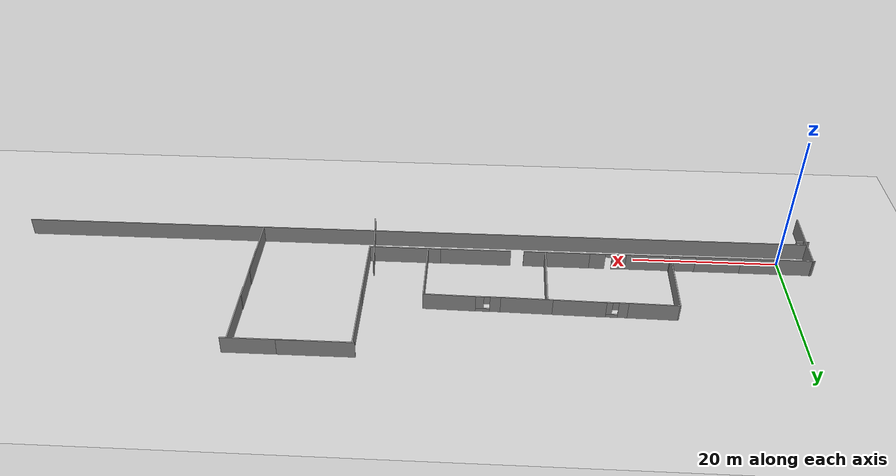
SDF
<sdf version="1.6">
 <world name="default">
  <light name="sun" type="directional">
   <pose>0 0 10 0 -0 0</pose>
   <diffuse>0.8 0.8 0.8 1</diffuse>
   <specular>0.2 0.2 0.2 1</specular>
   <attenuation>
    <range>1000</range>
    <constant>0.9</constant>
    <linear>0.01</linear>
    <quadratic>0.001</quadratic>
   </attenuation>
   <direction>-0.5 0.1 -0.9</direction>
  </light>
  <plugin name="ros_interface_plugin" filename="librotors_gazebo_ros_interface_plugin.so"/>
  <model name="ground_plane">
   <static>1</static>
   <link name="link">
    <collision name="collision">
     <geometry><plane><normal>0 0 1</normal><size>100 100</size></plane></geometry>
     <surface>
      <contact><collide_bitmask>65535</collide_bitmask></contact>
      <friction><ode><mu>100</mu><mu2>50</mu2></ode></friction>
     </surface>
    </collision>
    <visual name="visual">
     <cast_shadows>0</cast_shadows>
     <geometry><plane><normal>0 0 1</normal><size>100 100</size></plane></geometry>
     <material>
      <script><uri>file://media/materials/scripts/gazebo.material</uri><name>Gazebo/Grey</name></script>
     </material>
    </visual>
   </link>
  </model>
  <gravity>0 0 -9.8</gravity>
  <magnetic_field>6e-06 2.3e-05 -4.2e-05</magnetic_field>
  <atmosphere type="adiabatic"/>
  <physics name="default_physics" default="0" type="ode">
   <max_step_size>0.001</max_step_size>
   <real_time_factor>1</real_time_factor>
   <real_time_update_rate>1000</real_time_update_rate>
  </physics>
  <scene><ambient>0.4 0.4 0.4 1</ambient><background>0.7 0.7 0.7 1</background><shadows>1</shadows></scene>
  <spherical_coordinates>
   <surface_model>EARTH_WGS84</surface_model>
   <latitude_deg>0</latitude_deg>
   <longitude_deg>0</longitude_deg>
   <elevation>0</elevation>
   <heading_deg>0</heading_deg>
  </spherical_coordinates>
  <model name="wall10">
   <pose>7.97788 2.0663 0 0 -0 0</pose>
   <link name="Wall_1">
    <collision name="Wall_1_Collision">
     <geometry><box><size>10 0.15 2.5</size></box></geometry>
     <pose>0 0 1.25 0 -0 0</pose>
    </collision>
    <visual name="Wall_1_Visual">
     <pose>0 0 1.25 0 -0 0</pose>
     <geometry><box><size>10 0.15 2.5</size></box></geometry>
     <material>
      <script><uri>file://media/materials/scripts/gazebo.material</uri><name>Gazebo/Grey</name></script>
      <ambient>1 1 1 1</ambient>
     </material>
     <meta><layer>0</layer></meta>
    </visual>
   </link>
   <static>1</static>
  </model>
  <model name="wall10_0">
   <pose>16.8766 2.06715 0 0 -0 0</pose>
   <link name="Wall_1">
    <collision name="Wall_1_Collision">
     <geometry><box><size>10 0.15 2.5</size></box></geometry>
     <pose>0 0 1.25 0 -0 0</pose>
    </collision>
    <visual name="Wall_1_Visual">
     <pose>0 0 1.25 0 -0 0</pose>
     <geometry><box><size>10 0.15 2.5</size></box></geometry>
     <material>
      <script><uri>file://media/materials/scripts/gazebo.material</uri><name>Gazebo/Grey</name></script>
      <ambient>1 1 1 1</ambient>
     </material>
     <meta><layer>0</layer></meta>
    </visual>
   </link>
   <static>1</static>
  </model>
  <model name="wall10_1_clone_0">
   <pose>-4.11342 -2.70699 0 0 -0 1.55</pose>
   <link name="Wall_1">
    <collision name="Wall_1_Collision">
     <geometry><box><size>10 0.15 2.5</size></box></geometry>
     <pose>0 0 1.25 0 -0 0</pose>
    </collision>
    <visual name="Wall_1_Visual">
     <pose>0 0 1.25 0 -0 0</pose>
     <geometry><box><size>10 0.15 2.5</size></box></geometry>
     <material>
      <script><uri>file://media/materials/scripts/gazebo.material</uri><name>Gazebo/Grey</name></script>
      <ambient>1 1 1 1</ambient>
     </material>
     <meta><layer>0</layer></meta>
    </visual>
   </link>
   <static>1</static>
  </model>
  <model name="longwall">
   <pose>51.2944 -1.61629 0 0 -0 0</pose>
   <link name="Wall_0">
    <collision name="Wall_0_Collision">
     <geometry><box><size>110.75 0.15 2.5</size></box></geometry>
     <pose>0 0 1.25 0 -0 0</pose>
    </collision>
    <visual name="Wall_0_Visual">
     <pose>0 0 1.25 0 -0 0</pose>
     <geometry><box><size>110.75 0.15 2.5</size></box></geometry>
     <material>
      <script><uri>file://media/materials/scripts/gazebo.material</uri><name>Gazebo/Grey</name></script>
      <ambient>1 1 1 1</ambient>
     </material>
     <meta><layer>0</layer></meta>
    </visual>
    <pose>2e-06 0 0 0 -0 0</pose>
   </link>
   <static>1</static>
  </model>
  <model name="wall10_clone">
   <pose>0.68551 2.08017 0 0 -0 0</pose>
   <link name="Wall_1">
    <collision name="Wall_1_Collision">
     <geometry><box><size>10 0.15 2.5</size></box></geometry>
     <pose>0 0 1.25 0 -0 0</pose>
    </collision>
    <visual name="Wall_1_Visual">
     <pose>0 0 1.25 0 -0 0</pose>
     <geometry><box><size>10 0.15 2.5</size></box></geometry>
     <material>
      <script><uri>file://media/materials/scripts/gazebo.material</uri><name>Gazebo/Grey</name></script>
      <ambient>1 1 1 1</ambient>
     </material>
     <meta><layer>0</layer></meta>
    </visual>
   </link>
   <static>1</static>
  </model>
  <model name="door5_clone">
   <pose>23.929 2.08919 0 0 -0 0</pose>
   <link name="Wall_0">
    <visual name="Wall_0_Visual_0">
     <pose>-1.5275 0 1.25 0 -0 0</pose>
     <geometry><box><size>1.945 0.15 2.5</size></box></geometry>
     <material>
      <script><uri>file://media/materials/scripts/gazebo.material</uri><name>Gazebo/Grey</name></script>
      <ambient>1 1 1 1</ambient>
     </material>
     <meta><layer>0</layer></meta>
    </visual>
    <collision name="Wall_0_Collision_0">
     <geometry><box><size>1.945 0.15 2.5</size></box></geometry>
     <pose>-1.5275 0 1.25 0 -0 0</pose>
    </collision>
    <visual name="Wall_0_Visual_1">
     <pose>1.4225 0 1.25 0 -0 0</pose>
     <geometry><box><size>2.155 0.15 2.5</size></box></geometry>
     <material>
      <script><uri>file://media/materials/scripts/gazebo.material</uri><name>Gazebo/Grey</name></script>
      <ambient>1 1 1 1</ambient>
     </material>
     <meta><layer>0</layer></meta>
    </visual>
    <collision name="Wall_0_Collision_1">
     <geometry><box><size>2.155 0.15 2.5</size></box></geometry>
     <pose>1.4225 0 1.25 0 -0 0</pose>
    </collision>
    <visual name="Wall_0_Visual_2">
     <pose>-0.105 0 2.25 0 -0 0</pose>
     <geometry><box><size>0.9 0.15 0.5</size></box></geometry>
     <material>
      <script><uri>file://media/materials/scripts/gazebo.material</uri><name>Gazebo/Grey</name></script>
      <ambient>1 1 1 1</ambient>
     </material>
     <meta><layer>0</layer></meta>
    </visual>
    <collision name="Wall_0_Collision_2">
     <geometry><box><size>0.9 0.15 0.5</size></box></geometry>
     <pose>-0.105 0 2.25 0 -0 0</pose>
    </collision>
   </link>
   <static>1</static>
  </model>
  <model name="wall10_0_clone_clone_clone">
   <pose>42.3633 2.11189 0 0 -0 0</pose>
   <link name="Wall_1">
    <collision name="Wall_1_Collision">
     <geometry><box><size>10 0.15 2.5</size></box></geometry>
     <pose>0 0 1.25 0 -0 0</pose>
    </collision>
    <visual name="Wall_1_Visual">
     <pose>0 0 1.25 0 -0 0</pose>
     <geometry><box><size>10 0.15 2.5</size></box></geometry>
     <material>
      <script><uri>file://media/materials/scripts/gazebo.material</uri><name>Gazebo/Grey</name></script>
      <ambient>1 1 1 1</ambient>
     </material>
     <meta><layer>0</layer></meta>
    </visual>
   </link>
   <static>1</static>
  </model>
  <model name="wall10_2_clone">
   <pose>52.1406 2.1181 0 0 -0 0</pose>
   <link name="Wall_1">
    <collision name="Wall_1_Collision">
     <geometry><box><size>10 0.15 2.5</size></box></geometry>
     <pose>0 0 1.25 0 -0 0</pose>
    </collision>
    <visual name="Wall_1_Visual">
     <pose>0 0 1.25 0 -0 0</pose>
     <geometry><box><size>10 0.15 2.5</size></box></geometry>
     <material>
      <script><uri>file://media/materials/scripts/gazebo.material</uri><name>Gazebo/Grey</name></script>
      <ambient>1 1 1 1</ambient>
     </material>
     <meta><layer>0</layer></meta>
    </visual>
   </link>
   <static>1</static>
  </model>
  <model name="wall10_1_clone_2_clone">
   <pose>57.1764 7.04122 0 0 -0 1.55</pose>
   <link name="Wall_1">
    <collision name="Wall_1_Collision">
     <geometry><box><size>10 0.15 2.5</size></box></geometry>
     <pose>0 0 1.25 0 -0 0</pose>
    </collision>
    <visual name="Wall_1_Visual">
     <pose>0 0 1.25 0 -0 0</pose>
     <geometry><box><size>10 0.15 2.5</size></box></geometry>
     <material>
      <script><uri>file://media/materials/scripts/gazebo.material</uri><name>Gazebo/Grey</name></script>
      <ambient>1 1 1 1</ambient>
     </material>
     <meta><layer>0</layer></meta>
    </visual>
   </link>
   <static>1</static>
  </model>
  <model name="wall10_1_clone_3_clone">
   <pose>57.3821 16.8246 0 0 -0 1.55</pose>
   <link name="Wall_1">
    <collision name="Wall_1_Collision">
     <geometry><box><size>10 0.15 2.5</size></box></geometry>
     <pose>0 0 1.25 0 -0 0</pose>
    </collision>
    <visual name="Wall_1_Visual">
     <pose>0 0 1.25 0 -0 0</pose>
     <geometry><box><size>10 0.15 2.5</size></box></geometry>
     <material>
      <script><uri>file://media/materials/scripts/gazebo.material</uri><name>Gazebo/Grey</name></script>
      <ambient>1 1 1 1</ambient>
     </material>
     <meta><layer>0</layer></meta>
    </visual>
   </link>
   <static>1</static>
  </model>
  <model name="wall10_3_clone_2_clone_clone">
   <pose>62.1249 21.8565 0 0 -0 0</pose>
   <link name="Wall_1">
    <collision name="Wall_1_Collision">
     <geometry><box><size>10 0.15 2.5</size></box></geometry>
     <pose>0 0 1.25 0 -0 0</pose>
    </collision>
    <visual name="Wall_1_Visual">
     <pose>0 0 1.25 0 -0 0</pose>
     <geometry><box><size>10 0.15 2.5</size></box></geometry>
     <material>
      <script><uri>file://media/materials/scripts/gazebo.material</uri><name>Gazebo/Grey</name></script>
      <ambient>1 1 1 1</ambient>
     </material>
     <meta><layer>0</layer></meta>
    </visual>
   </link>
   <static>1</static>
  </model>
  <model name="wall10_3_clone_2_clone_clone_clone">
   <pose>69.2154 21.856 0 0 -0 0</pose>
   <link name="Wall_1">
    <collision name="Wall_1_Collision">
     <geometry><box><size>10 0.15 2.5</size></box></geometry>
     <pose>0 0 1.25 0 -0 0</pose>
    </collision>
    <visual name="Wall_1_Visual">
     <pose>0 0 1.25 0 -0 0</pose>
     <geometry><box><size>10 0.15 2.5</size></box></geometry>
     <material>
      <script><uri>file://media/materials/scripts/gazebo.material</uri><name>Gazebo/Grey</name></script>
      <ambient>1 1 1 1</ambient>
     </material>
     <meta><layer>0</layer></meta>
    </visual>
   </link>
   <static>1</static>
  </model>
  <model name="wall10_1_clone_3_clone_clone">
   <pose>73.1905 16.8906 0 0 -0 1.55</pose>
   <link name="Wall_1">
    <collision name="Wall_1_Collision">
     <geometry><box><size>10 0.15 2.5</size></box></geometry>
     <pose>0 0 1.25 0 -0 0</pose>
    </collision>
    <visual name="Wall_1_Visual">
     <pose>0 0 1.25 0 -0 0</pose>
     <geometry><box><size>10 0.15 2.5</size></box></geometry>
     <material>
      <script><uri>file://media/materials/scripts/gazebo.material</uri><name>Gazebo/Grey</name></script>
      <ambient>1 1 1 1</ambient>
     </material>
     <meta><layer>0</layer></meta>
    </visual>
   </link>
   <static>1</static>
  </model>
  <model name="wall10_1_clone_2_clone_clone">
   <pose>72.9484 8.60203 0 0 -0 1.55</pose>
   <link name="Wall_1">
    <collision name="Wall_1_Collision">
     <geometry><box><size>10 0.15 2.5</size></box></geometry>
     <pose>0 0 1.25 0 -0 0</pose>
    </collision>
    <visual name="Wall_1_Visual">
     <pose>0 0 1.25 0 -0 0</pose>
     <geometry><box><size>10 0.15 2.5</size></box></geometry>
     <material>
      <script><uri>file://media/materials/scripts/gazebo.material</uri><name>Gazebo/Grey</name></script>
      <ambient>1 1 1 1</ambient>
     </material>
     <meta><layer>0</layer></meta>
    </visual>
   </link>
   <static>1</static>
  </model>
  <model name="wall10_1_clone_2_clone_clone_0">
   <pose>72.7886 3.43374 0 0 -0 1.55</pose>
   <link name="Wall_1">
    <collision name="Wall_1_Collision">
     <geometry><box><size>10 0.15 2.5</size></box></geometry>
     <pose>0 0 1.25 0 -0 0</pose>
    </collision>
    <visual name="Wall_1_Visual">
     <pose>0 0 1.25 0 -0 0</pose>
     <geometry><box><size>10 0.15 2.5</size></box></geometry>
     <material>
      <script><uri>file://media/materials/scripts/gazebo.material</uri><name>Gazebo/Grey</name></script>
      <ambient>1 1 1 1</ambient>
     </material>
     <meta><layer>0</layer></meta>
    </visual>
   </link>
   <static>1</static>
  </model>
  <model name="wallyese_clone_clone_0">
   <pose>18.9996 12.4795 0 0 -0 1.55</pose>
   <link name="Wall_2">
    <collision name="Wall_2_Collision">
     <geometry><box><size>7 0.15 2.5</size></box></geometry>
     <pose>0 0 1.25 0 -0 0</pose>
    </collision>
    <visual name="Wall_2_Visual">
     <pose>0 0 1.25 0 -0 0</pose>
     <geometry><box><size>7 0.15 2.5</size></box></geometry>
     <material>
      <script><uri>file://media/materials/scripts/gazebo.material</uri><name>Gazebo/Grey</name></script>
      <ambient>1 1 1 1</ambient>
     </material>
     <meta><layer>0</layer></meta>
    </visual>
    <pose>0 0 0 0 -0 -1.5708</pose>
   </link>
   <static>1</static>
  </model>
  <model name="window_clone_0_clone">
   <pose>23.8293 12.4126 0 0 -0 0</pose>
   <link name="Wall_2">
    <visual name="Wall_2_Visual_0">
     <pose>-1.04762 0 1.25 0 -0 0</pose>
     <geometry><box><size>1.40477 0.15 2.5</size></box></geometry>
     <material>
      <script><uri>file://media/materials/scripts/gazebo.material</uri><name>Gazebo/Grey</name></script>
      <ambient>1 1 1 1</ambient>
     </material>
     <meta><layer>0</layer></meta>
    </visual>
    <collision name="Wall_2_Collision_0">
     <geometry><box><size>1.40477 0.15 2.5</size></box></geometry>
     <pose>-1.04762 0 1.25 0 -0 0</pose>
    </collision>
    <visual name="Wall_2_Visual_1">
     <pose>0.702384 0 0.25 0 -0 0</pose>
     <geometry><box><size>2.09523 0.15 0.5</size></box></geometry>
     <material>
      <script><uri>file://media/materials/scripts/gazebo.material</uri><name>Gazebo/Grey</name></script>
      <ambient>1 1 1 1</ambient>
     </material>
     <meta><layer>0</layer></meta>
    </visual>
    <collision name="Wall_2_Collision_1">
     <geometry><box><size>2.09523 0.15 0.5</size></box></geometry>
     <pose>0.702384 0 0.25 0 -0 0</pose>
    </collision>
    <visual name="Wall_2_Visual_2">
     <pose>1.10238 0 1.5 0 -0 0</pose>
     <geometry><box><size>1.29523 0.15 2</size></box></geometry>
     <material>
      <script><uri>file://media/materials/scripts/gazebo.material</uri><name>Gazebo/Grey</name></script>
      <ambient>1 1 1 1</ambient>
     </material>
     <meta><layer>0</layer></meta>
    </visual>
    <collision name="Wall_2_Collision_2">
     <geometry><box><size>1.29523 0.15 2</size></box></geometry>
     <pose>1.10238 0 1.5 0 -0 0</pose>
    </collision>
    <visual name="Wall_2_Visual_3">
     <pose>0.054767 0 1.9 0 -0 0</pose>
     <geometry><box><size>0.8 0.15 1.2</size></box></geometry>
     <material>
      <script><uri>file://media/materials/scripts/gazebo.material</uri><name>Gazebo/Grey</name></script>
      <ambient>1 1 1 1</ambient>
     </material>
     <meta><layer>0</layer></meta>
    </visual>
    <collision name="Wall_2_Collision_3">
     <geometry><box><size>0.8 0.15 1.2</size></box></geometry>
     <pose>0.054767 0 1.9 0 -0 0</pose>
    </collision>
   </link>
   <static>1</static>
  </model>
  <model name="wallyese_clone_clone_clone">
   <pose>28.5533 12.3516 0 0 -0 1.55</pose>
   <link name="Wall_2">
    <collision name="Wall_2_Collision">
     <geometry><box><size>7 0.15 2.5</size></box></geometry>
     <pose>0 0 1.25 0 -0 0</pose>
    </collision>
    <visual name="Wall_2_Visual">
     <pose>0 0 1.25 0 -0 0</pose>
     <geometry><box><size>7 0.15 2.5</size></box></geometry>
     <material>
      <script><uri>file://media/materials/scripts/gazebo.material</uri><name>Gazebo/Grey</name></script>
      <ambient>1 1 1 1</ambient>
     </material>
     <meta><layer>0</layer></meta>
    </visual>
    <pose>0 0 0 0 -0 -1.5708</pose>
   </link>
   <static>1</static>
  </model>
  <model name="wallyese_clone_0">
   <pose>35.4898 12.2031 0 0 -0 1.55</pose>
   <link name="Wall_2">
    <collision name="Wall_2_Collision">
     <geometry><box><size>7 0.15 2.5</size></box></geometry>
     <pose>0 0 1.25 0 -0 0</pose>
    </collision>
    <visual name="Wall_2_Visual">
     <pose>0 0 1.25 0 -0 0</pose>
     <geometry><box><size>7 0.15 2.5</size></box></geometry>
     <material>
      <script><uri>file://media/materials/scripts/gazebo.material</uri><name>Gazebo/Grey</name></script>
      <ambient>1 1 1 1</ambient>
     </material>
     <meta><layer>0</layer></meta>
    </visual>
    <pose>0 0 0 0 -0 -1.5708</pose>
   </link>
   <static>1</static>
  </model>
  <model name="wall10_1_clone_5">
   <pose>32.6787 7.16976 0 0 -0 1.55</pose>
   <link name="Wall_1">
    <collision name="Wall_1_Collision">
     <geometry><box><size>10 0.15 2.5</size></box></geometry>
     <pose>0 0 1.25 0 -0 0</pose>
    </collision>
    <visual name="Wall_1_Visual">
     <pose>0 0 1.25 0 -0 0</pose>
     <geometry><box><size>10 0.15 2.5</size></box></geometry>
     <material>
      <script><uri>file://media/materials/scripts/gazebo.material</uri><name>Gazebo/Grey</name></script>
      <ambient>1 1 1 1</ambient>
     </material>
     <meta><layer>0</layer></meta>
    </visual>
   </link>
   <static>1</static>
  </model>
  <model name="window_clone_0_clone_clone">
   <pose>40.6463 12.1411 0 0 -0 0</pose>
   <link name="Wall_2">
    <visual name="Wall_2_Visual_0">
     <pose>-1.04762 0 1.25 0 -0 0</pose>
     <geometry><box><size>1.40477 0.15 2.5</size></box></geometry>
     <material>
      <script><uri>file://media/materials/scripts/gazebo.material</uri><name>Gazebo/Grey</name></script>
      <ambient>1 1 1 1</ambient>
     </material>
     <meta><layer>0</layer></meta>
    </visual>
    <collision name="Wall_2_Collision_0">
     <geometry><box><size>1.40477 0.15 2.5</size></box></geometry>
     <pose>-1.04762 0 1.25 0 -0 0</pose>
    </collision>
    <visual name="Wall_2_Visual_1">
     <pose>0.702384 0 0.25 0 -0 0</pose>
     <geometry><box><size>2.09523 0.15 0.5</size></box></geometry>
     <material>
      <script><uri>file://media/materials/scripts/gazebo.material</uri><name>Gazebo/Grey</name></script>
      <ambient>1 1 1 1</ambient>
     </material>
     <meta><layer>0</layer></meta>
    </visual>
    <collision name="Wall_2_Collision_1">
     <geometry><box><size>2.09523 0.15 0.5</size></box></geometry>
     <pose>0.702384 0 0.25 0 -0 0</pose>
    </collision>
    <visual name="Wall_2_Visual_2">
     <pose>1.10238 0 1.5 0 -0 0</pose>
     <geometry><box><size>1.29523 0.15 2</size></box></geometry>
     <material>
      <script><uri>file://media/materials/scripts/gazebo.material</uri><name>Gazebo/Grey</name></script>
      <ambient>1 1 1 1</ambient>
     </material>
     <meta><layer>0</layer></meta>
    </visual>
    <collision name="Wall_2_Collision_2">
     <geometry><box><size>1.29523 0.15 2</size></box></geometry>
     <pose>1.10238 0 1.5 0 -0 0</pose>
    </collision>
    <visual name="Wall_2_Visual_3">
     <pose>0.054767 0 1.9 0 -0 0</pose>
     <geometry><box><size>0.8 0.15 1.2</size></box></geometry>
     <material>
      <script><uri>file://media/materials/scripts/gazebo.material</uri><name>Gazebo/Grey</name></script>
      <ambient>1 1 1 1</ambient>
     </material>
     <meta><layer>0</layer></meta>
    </visual>
    <collision name="Wall_2_Collision_3">
     <geometry><box><size>0.8 0.15 1.2</size></box></geometry>
     <pose>0.054767 0 1.9 0 -0 0</pose>
    </collision>
   </link>
   <static>1</static>
  </model>
  <model name="wallyese_clone_0_clone">
   <pose>45.6765 12.0757 0 0 -0 1.55</pose>
   <link name="Wall_2">
    <collision name="Wall_2_Collision">
     <geometry><box><size>7 0.15 2.5</size></box></geometry>
     <pose>0 0 1.25 0 -0 0</pose>
    </collision>
    <visual name="Wall_2_Visual">
     <pose>0 0 1.25 0 -0 0</pose>
     <geometry><box><size>7 0.15 2.5</size></box></geometry>
     <material>
      <script><uri>file://media/materials/scripts/gazebo.material</uri><name>Gazebo/Grey</name></script>
      <ambient>1 1 1 1</ambient>
     </material>
     <meta><layer>0</layer></meta>
    </visual>
    <pose>0 0 0 0 -0 -1.5708</pose>
   </link>
   <static>1</static>
  </model>
  <model name="wall10_1_clone_5_clone">
   <pose>49.014 7.07998 0 0 -0 1.55</pose>
   <link name="Wall_1">
    <collision name="Wall_1_Collision">
     <geometry><box><size>10 0.15 2.5</size></box></geometry>
     <pose>0 0 1.25 0 -0 0</pose>
    </collision>
    <visual name="Wall_1_Visual">
     <pose>0 0 1.25 0 -0 0</pose>
     <geometry><box><size>10 0.15 2.5</size></box></geometry>
     <material>
      <script><uri>file://media/materials/scripts/gazebo.material</uri><name>Gazebo/Grey</name></script>
      <ambient>1 1 1 1</ambient>
     </material>
     <meta><layer>0</layer></meta>
    </visual>
   </link>
   <static>1</static>
  </model>
  <model name="wall10_1_clone_5_clone_0">
   <pose>15.4824 7.62923 0 0 -0 1.55</pose>
   <link name="Wall_1">
    <collision name="Wall_1_Collision">
     <geometry><box><size>10 0.15 2.5</size></box></geometry>
     <pose>0 0 1.25 0 -0 0</pose>
    </collision>
    <visual name="Wall_1_Visual">
     <pose>0 0 1.25 0 -0 0</pose>
     <geometry><box><size>10 0.15 2.5</size></box></geometry>
     <material>
      <script><uri>file://media/materials/scripts/gazebo.material</uri><name>Gazebo/Grey</name></script>
      <ambient>1 1 1 1</ambient>
     </material>
     <meta><layer>0</layer></meta>
    </visual>
   </link>
   <static>1</static>
  </model>
  <model name="wall10_1_clone_5_clone_1">
   <pose>15.46 6.96252 0 0 -0 1.55</pose>
   <link name="Wall_1">
    <collision name="Wall_1_Collision">
     <geometry><box><size>10 0.15 2.5</size></box></geometry>
     <pose>0 0 1.25 0 -0 0</pose>
    </collision>
    <visual name="Wall_1_Visual">
     <pose>0 0 1.25 0 -0 0</pose>
     <geometry><box><size>10 0.15 2.5</size></box></geometry>
     <material>
      <script><uri>file://media/materials/scripts/gazebo.material</uri><name>Gazebo/Grey</name></script>
      <ambient>1 1 1 1</ambient>
     </material>
     <meta><layer>0</layer></meta>
    </visual>
   </link>
   <static>1</static>
  </model>
  <model name="unit_box">
   <pose>55.6525 1.5431 0.5 0 -0 0</pose>
   <link name="link">
    <inertial>
     <mass>1</mass>
     <inertia>
      <ixx>0.166667</ixx>
      <ixy>0</ixy>
      <ixz>0</ixz>
      <iyy>0.166667</iyy>
      <iyz>0</iyz>
      <izz>0.166667</izz>
     </inertia>
    </inertial>
    <collision name="collision"><geometry><box><size>1 1 1</size></box></geometry></collision>
    <visual name="visual">
     <geometry><box><size>1 1 1</size></box></geometry>
     <material>
      <script><name>Gazebo/Grey</name><uri>file://media/materials/scripts/gazebo.material</uri></script>
     </material>
    </visual>
   </link>
  </model>
  <model name="wall10_1">
   <pose>56.556 0.470136 0 0 0 -1.51045</pose>
   <link name="Wall_1">
    <collision name="Wall_1_Collision">
     <geometry><box><size>10 0.15 2.5</size></box></geometry>
     <pose>0 0 1.25 0 -0 0</pose>
    </collision>
    <visual name="Wall_1_Visual">
     <pose>0 0 1.25 0 -0 0</pose>
     <geometry><box><size>10 0.15 2.5</size></box></geometry>
     <material>
      <script><uri>file://media/materials/scripts/gazebo.material</uri><name>Gazebo/Grey</name></script>
      <ambient>1 1 1 1</ambient>
     </material>
     <meta><layer>0</layer></meta>
    </visual>
   </link>
   <static>1</static>
  </model>
  <model name="door1.8">
   <link name="Door_0">
    <collision name="Door_0_Collision">
     <geometry><box><size>1.8 0.2 2</size></box></geometry>
     <pose>0 0 1 0 -0 0</pose>
    </collision>
    <visual name="Door_0_Visual">
     <pose>0 0 1 0 -0 0</pose>
     <geometry><box><size>1.8 0.2 2</size></box></geometry>
     <material>
      <script><uri>file://media/materials/scripts/gazebo.material</uri><name>Gazebo/Grey</name></script>
     </material>
    </visual>
    <pose>-3.965 -2.94 0 0 -0 0</pose>
   </link>
   <static>1</static>
  </model>
  <model name="wall10_0_clone_clone_clone_clone">
   <pose>30.5719 2.08633 0 0 -0 0</pose>
   <link name="Wall_1">
    <collision name="Wall_1_Collision">
     <geometry><box><size>10 0.15 2.5</size></box></geometry>
     <pose>0 0 1.25 0 -0 0</pose>
    </collision>
    <visual name="Wall_1_Visual">
     <pose>0 0 1.25 0 -0 0</pose>
     <geometry><box><size>10 0.15 2.5</size></box></geometry>
     <material>
      <script><uri>file://media/materials/scripts/gazebo.material</uri><name>Gazebo/Grey</name></script>
      <ambient>1 1 1 1</ambient>
     </material>
     <meta><layer>0</layer></meta>
    </visual>
   </link>
   <static>1</static>
  </model>
 </world>
</sdf>
